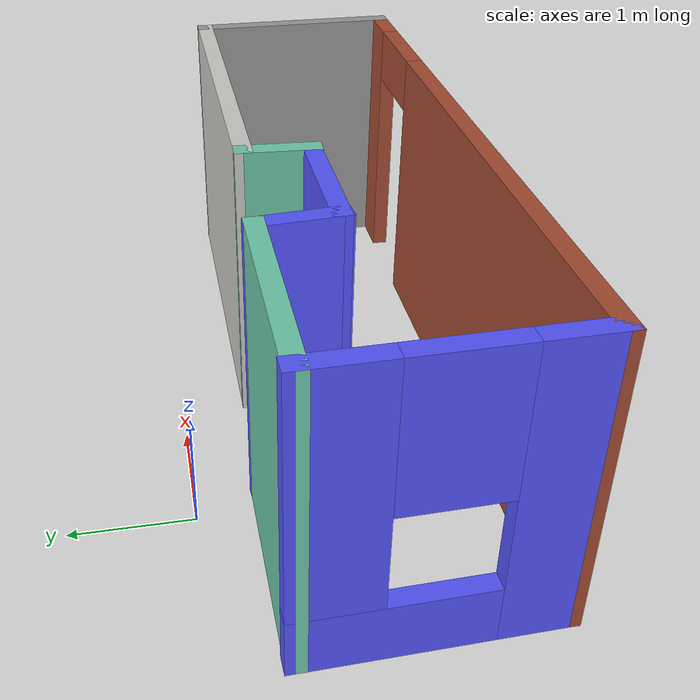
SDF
<?xml version='1.0'?>
<sdf version='1.6'>
  <model name='mybuilding'>
    <pose frame=''>1.52443 -1.48943 0 0 -0 0</pose>
    <link name='Wall_19'>
      <pose frame=''>-2.92443 0.004432 0 0 -0 1.59152</pose>
      <visual name='Wall_19_Visual_0'>
        <pose frame=''>-0.737535 0 1.25 0 -0 0</pose>
        <geometry>
          <box>
            <size>0.605344 0.15 2.5</size>
          </box>
        </geometry>
        <material>
          <script>
            <uri>file://media/materials/scripts/gazebo.material</uri>
            <name>Gazebo/Grey</name>
          </script>
          <ambient>0.333333 0.333333 1 1</ambient>
        </material>
        <meta>
          <layer>0</layer>
        </meta>
      </visual>
      <collision name='Wall_19_Collision_0'>
        <geometry>
          <box>
            <size>0.605344 0.15 2.5</size>
          </box>
        </geometry>
        <pose frame=''>-0.737535 0 1.25 0 -0 0</pose>
      </collision>
      <visual name='Wall_19_Visual_1'>
        <pose frame=''>0.302672 0 0.25 0 -0 0</pose>
        <geometry>
          <box>
            <size>1.47507 0.15 0.5</size>
          </box>
        </geometry>
        <material>
          <script>
            <uri>file://media/materials/scripts/gazebo.material</uri>
            <name>Gazebo/Grey</name>
          </script>
          <ambient>0.333333 0.333333 1 1</ambient>
        </material>
        <meta>
          <layer>0</layer>
        </meta>
      </visual>
      <collision name='Wall_19_Collision_1'>
        <geometry>
          <box>
            <size>1.47507 0.15 0.5</size>
          </box>
        </geometry>
        <pose frame=''>0.302672 0 0.25 0 -0 0</pose>
      </collision>
      <visual name='Wall_19_Visual_2'>
        <pose frame=''>0.702672 0 1.5 0 -0 0</pose>
        <geometry>
          <box>
            <size>0.675071 0.15 2</size>
          </box>
        </geometry>
        <material>
          <script>
            <uri>file://media/materials/scripts/gazebo.material</uri>
            <name>Gazebo/Grey</name>
          </script>
          <ambient>0.333333 0.333333 1 1</ambient>
        </material>
        <meta>
          <layer>0</layer>
        </meta>
      </visual>
      <collision name='Wall_19_Collision_2'>
        <geometry>
          <box>
            <size>0.675071 0.15 2</size>
          </box>
        </geometry>
        <pose frame=''>0.702672 0 1.5 0 -0 0</pose>
      </collision>
      <visual name='Wall_19_Visual_3'>
        <pose frame=''>-0.034864 0 1.9 0 -0 0</pose>
        <geometry>
          <box>
            <size>0.8 0.15 1.2</size>
          </box>
        </geometry>
        <material>
          <script>
            <uri>file://media/materials/scripts/gazebo.material</uri>
            <name>Gazebo/Grey</name>
          </script>
          <ambient>0.333333 0.333333 1 1</ambient>
        </material>
        <meta>
          <layer>0</layer>
        </meta>
      </visual>
      <collision name='Wall_19_Collision_3'>
        <geometry>
          <box>
            <size>0.8 0.15 1.2</size>
          </box>
        </geometry>
        <pose frame=''>-0.034864 0 1.9 0 -0 0</pose>
      </collision>
    </link>
    <link name='Wall_20'>
      <collision name='Wall_20_Collision'>
        <geometry>
          <box>
            <size>1.75 0.15 2.5</size>
          </box>
        </geometry>
        <pose frame=''>0 0 1.25 0 -0 0</pose>
      </collision>
      <visual name='Wall_20_Visual'>
        <pose frame=''>0 0 1.25 0 -0 0</pose>
        <geometry>
          <box>
            <size>1.75 0.15 2.5</size>
          </box>
        </geometry>
        <material>
          <script>
            <uri>file://media/materials/scripts/gazebo.material</uri>
            <name>Gazebo/Grey</name>
          </script>
          <ambient>0.435294 0.796078 0.67451 1</ambient>
        </material>
        <meta>
          <layer>0</layer>
        </meta>
      </visual>
      <pose frame=''>-2.14443 0.959432 0 0 -0 0</pose>
    </link>
    <link name='Wall_21'>
      <collision name='Wall_21_Collision'>
        <geometry>
          <box>
            <size>0.772013 0.15 2.5</size>
          </box>
        </geometry>
        <pose frame=''>0 0 1.25 0 -0 0</pose>
      </collision>
      <visual name='Wall_21_Visual'>
        <pose frame=''>0 0 1.25 0 -0 0</pose>
        <geometry>
          <box>
            <size>0.772013 0.15 2.5</size>
          </box>
        </geometry>
        <material>
          <script>
            <uri>file://media/materials/scripts/gazebo.material</uri>
            <name>Gazebo/Grey</name>
          </script>
          <ambient>0.333333 0.333333 1 1</ambient>
        </material>
        <meta>
          <layer>0</layer>
        </meta>
      </visual>
      <pose frame=''>-1.31943 0.649432 0 0 0 -1.49032</pose>
    </link>
    <link name='Wall_22'>
      <collision name='Wall_22_Collision'>
        <geometry>
          <box>
            <size>1.25 0.15 2.5</size>
          </box>
        </geometry>
        <pose frame=''>0 0 1.25 0 -0 0</pose>
      </collision>
      <visual name='Wall_22_Visual'>
        <pose frame=''>0 0 1.25 0 -0 0</pose>
        <geometry>
          <box>
            <size>1.25 0.15 2.5</size>
          </box>
        </geometry>
        <material>
          <script>
            <uri>file://media/materials/scripts/gazebo.material</uri>
            <name>Gazebo/Grey</name>
          </script>
          <ambient>0.333333 0.333333 1 1</ambient>
        </material>
        <meta>
          <layer>0</layer>
        </meta>
      </visual>
      <pose frame=''>-0.744432 0.349432 0 0 -0 0</pose>
    </link>
    <link name='Wall_23'>
      <collision name='Wall_23_Collision'>
        <geometry>
          <box>
            <size>0.700818 0.15 2.5</size>
          </box>
        </geometry>
        <pose frame=''>0 0 1.25 0 -0 0</pose>
      </collision>
      <visual name='Wall_23_Visual'>
        <pose frame=''>0 0 1.25 0 -0 0</pose>
        <geometry>
          <box>
            <size>0.700818 0.15 2.5</size>
          </box>
        </geometry>
        <material>
          <script>
            <uri>file://media/materials/scripts/gazebo.material</uri>
            <name>Gazebo/Grey</name>
          </script>
          <ambient>0.435294 0.796078 0.67451 1</ambient>
        </material>
        <meta>
          <layer>0</layer>
        </meta>
      </visual>
      <pose frame=''>-0.179432 0.614432 0 0 -0 1.51631</pose>
    </link>
    <link name='Wall_24'>
      <collision name='Wall_24_Collision'>
        <geometry>
          <box>
            <size>3.25 0.15 2.5</size>
          </box>
        </geometry>
        <pose frame=''>0 0 1.25 0 -0 0</pose>
      </collision>
      <visual name='Wall_24_Visual'>
        <pose frame=''>0 0 1.25 0 -0 0</pose>
        <geometry>
          <box>
            <size>3.25 0.15 2.5</size>
          </box>
        </geometry>
        <material>
          <script>
            <uri>file://media/materials/scripts/gazebo.material</uri>
            <name>Gazebo/CeilingTiled</name>
          </script>
          <ambient>0.435294 0.796078 0.67451 1</ambient>
        </material>
        <meta>
          <layer>0</layer>
        </meta>
      </visual>
      <pose frame=''>1.38557 0.889432 0 0 -0 0</pose>
    </link>
    <link name='Wall_25'>
      <collision name='Wall_25_Collision'>
        <geometry>
          <box>
            <size>2.01003 0.15 2.5</size>
          </box>
        </geometry>
        <pose frame=''>0 0 1.25 0 -0 0</pose>
      </collision>
      <visual name='Wall_25_Visual'>
        <pose frame=''>0 0 1.25 0 -0 0</pose>
        <geometry>
          <box>
            <size>2.01003 0.15 2.5</size>
          </box>
        </geometry>
        <material>
          <script>
            <uri>file://media/materials/scripts/gazebo.material</uri>
            <name>Gazebo/Grey</name>
          </script>
          <ambient>1 1 1 1</ambient>
        </material>
        <meta>
          <layer>0</layer>
        </meta>
      </visual>
      <pose frame=''>2.94057 -0.040568 0 0 0 -1.56542</pose>
    </link>
    <link name='Wall_26'>
      <pose frame=''>0.020568 -0.970568 0 0 -0 3.14159</pose>
      <visual name='Wall_26_Visual_0'>
        <pose frame=''>-2.72294 0 1.25 0 -0 0</pose>
        <geometry>
          <box>
            <size>0.554118 0.15 2.5</size>
          </box>
        </geometry>
        <material>
          <script>
            <uri>file://media/materials/scripts/gazebo.material</uri>
            <name>Gazebo/Bricks</name>
          </script>
          <ambient>0.333333 0.333333 1 1</ambient>
        </material>
        <meta>
          <layer>0</layer>
        </meta>
      </visual>
      <collision name='Wall_26_Collision_0'>
        <geometry>
          <box>
            <size>0.554118 0.15 2.5</size>
          </box>
        </geometry>
        <pose frame=''>-2.72294 0 1.25 0 -0 0</pose>
      </collision>
      <visual name='Wall_26_Visual_1'>
        <pose frame=''>0.727059 0 1.25 0 -0 0</pose>
        <geometry>
          <box>
            <size>4.54588 0.15 2.5</size>
          </box>
        </geometry>
        <material>
          <script>
            <uri>file://media/materials/scripts/gazebo.material</uri>
            <name>Gazebo/Bricks</name>
          </script>
          <ambient>0.333333 0.333333 1 1</ambient>
        </material>
        <meta>
          <layer>0</layer>
        </meta>
      </visual>
      <collision name='Wall_26_Collision_1'>
        <geometry>
          <box>
            <size>4.54588 0.15 2.5</size>
          </box>
        </geometry>
        <pose frame=''>0.727059 0 1.25 0 -0 0</pose>
      </collision>
      <visual name='Wall_26_Visual_2'>
        <pose frame=''>-1.99588 0 2.25 0 -0 0</pose>
        <geometry>
          <box>
            <size>0.9 0.15 0.5</size>
          </box>
        </geometry>
        <material>
          <script>
            <uri>file://media/materials/scripts/gazebo.material</uri>
            <name>Gazebo/Bricks</name>
          </script>
          <ambient>0.333333 0.333333 1 1</ambient>
        </material>
        <meta>
          <layer>0</layer>
        </meta>
      </visual>
      <collision name='Wall_26_Collision_2'>
        <geometry>
          <box>
            <size>0.9 0.15 0.5</size>
          </box>
        </geometry>
        <pose frame=''>-1.99588 0 2.25 0 -0 0</pose>
      </collision>
    </link>
    <static>1</static>
  </model>
</sdf>
